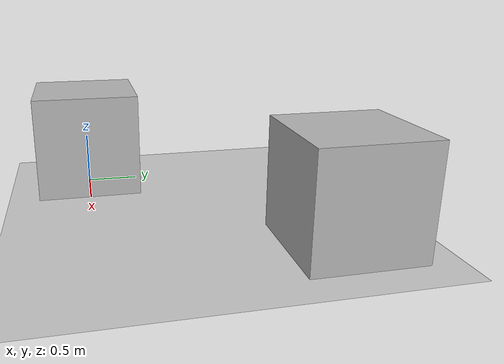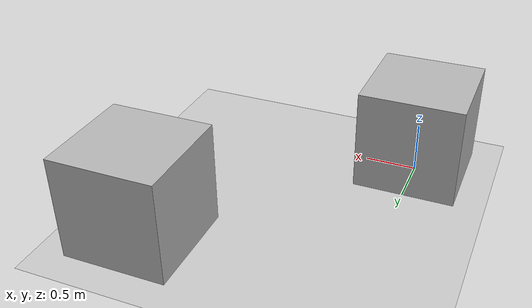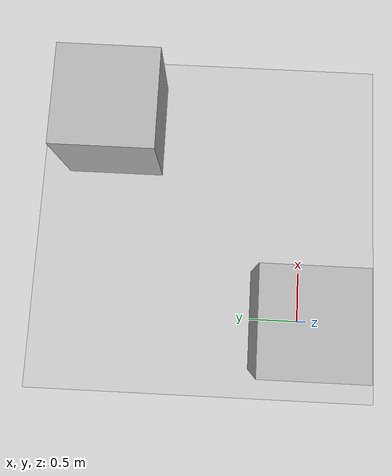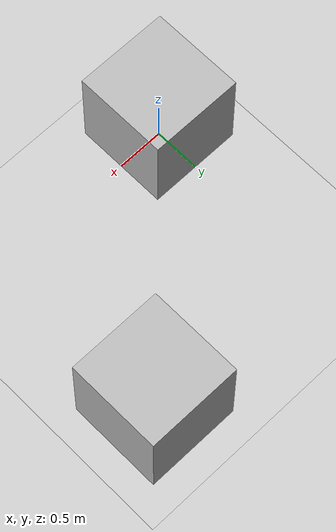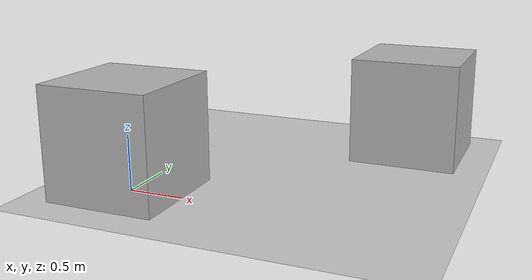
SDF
<?xml version="1.0"?>
<sdf version="1.6">
  <world name="default">
    <include>
      <uri>model://ground_plane</uri>
    </include>

     <include>
      <uri>model://sun</uri>
    </include>

    <model name="reader_box">
      <link name="link">
        <pose>0 0 0.5 0 0 0</pose>

        <collision name="box_collision">
          <geometry>
            <box>
              <size>1 1 1</size>
            </box>
          </geometry>
        </collision>

        <visual name="visual">
          <geometry>
            <box>
              <size>1 1 1</size>
            </box>
          </geometry>
        </visual>

        <sensor name='my_reader' type='uhf_rfid'>
              <topic>/reader_topic_name</topic>
        </sensor>
      </link>
    </model>

    <model name="tag_box">
      <link name="link">
        <pose>2 2 0.5 0 0 0</pose>

        <collision name="box_collision">
          <geometry>
            <box>
              <size>1 1 1</size>
            </box>
          </geometry>
        </collision>

        <visual name="visual">
          <geometry>
            <box>
              <size>1 1 1</size>
            </box>
          </geometry>
        </visual>

        <sensor name='my_tag' type='uhf_rfidtag'>
              <topic>/tag_topic_name</topic>
        </sensor>
      </link>
    </model>

  </world>
</sdf>
